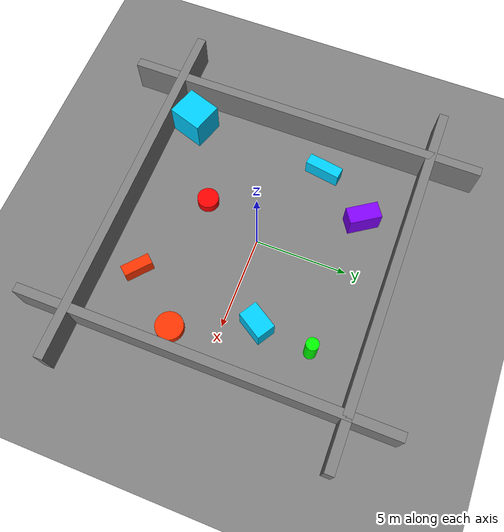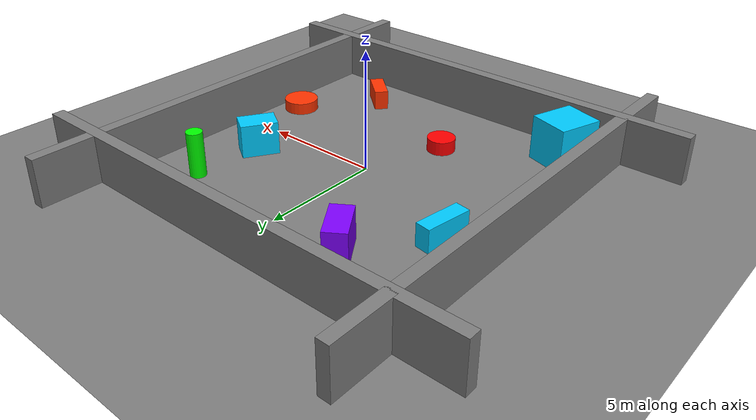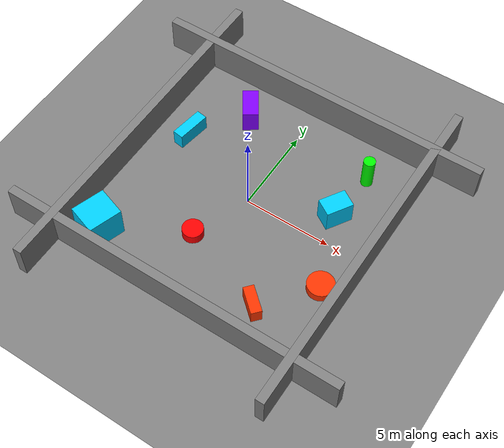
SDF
<?xml version="1.0" ?>
<sdf version="1.8">
  <world name="random_world">
    <physics name="1ms" type="ignored">
      <max_step_size>0.002</max_step_size>
      <real_time_update_rate>200</real_time_update_rate>
    </physics>

    <plugin
      filename="ignition-gazebo-physics-system"
      name="ignition::gazebo::systems::Physics">
      <include_entity_names>true</include_entity_names>
    </plugin>
    <plugin
      filename="ignition-gazebo-sensors-system"
      name="ignition::gazebo::systems::Sensors">
      <render_engine>ogre</render_engine>
    </plugin>
    <plugin
      filename="ignition-gazebo-user-commands-system"
      name="ignition::gazebo::systems::UserCommands"> <!-- do no delete -->
    </plugin>
    <plugin
      filename="libignition-gazebo-contact-system.so"
      name="ignition::gazebo::systems::Contact">
      <topic>/world/random_world/physics/contacts</topic>
    </plugin>
    <plugin
      filename="ignition-gazebo-scene-broadcaster-system"
      name="ignition::gazebo::systems::SceneBroadcaster">
    </plugin>

    <light name='sun' type='directional'>
      <pose>0 0 10 0 -0 0</pose>
      <cast_shadows>true</cast_shadows>
      <intensity>1</intensity>
      <direction>-0.5 0.5 -1</direction>
      <diffuse>1 1 1 1</diffuse>
      <specular>0.1 0.1 0.1 1</specular>
      <attenuation>
        <range>10</range>
        <linear>1</linear>
        <constant>1</constant>
        <quadratic>0</quadratic>
      </attenuation>
    </light>

    <model name='ground_plane'>
      <static>true</static>
      <link name='link'>
        <collision name='collision'>
          <geometry>
            <plane>
              <normal>0 0 1</normal>
              <size>50 50</size>
            </plane>
          </geometry>
          <surface><friction><ode/></friction></surface>
        </collision>
        <visual name='visual'>
          <geometry>
            <plane>
              <normal>0 0 1</normal>
              <size>50 50</size>
            </plane>
          </geometry>
          <material>
            <ambient>0.5 0.5 0.5 1</ambient>
            <diffuse>0.5 0.5 0.5 1</diffuse>
          </material>
        </visual>
      </link>
    </model>

    <model name="north_wall">
      <pose>0 7.25 1.0 0 0 0</pose>
      <link name="link">
        <collision name="collision">
          <geometry>
            <box><size>20 0.5 2.0</size></box>
          </geometry>
        </collision>
        <visual name="visual">
          <geometry>
            <box><size>20 0.5 2.0</size></box>
          </geometry>
          <material>
            <ambient>0.5 0.5 0.5 1</ambient>
            <diffuse>0.5 0.5 0.5 1</diffuse>
          </material>
        </visual>
      </link>
      <static>true</static>
    </model>

    <model name="south_wall">
      <pose>0 -7.25 1.0 0 0 0</pose>
      <link name="link">
        <collision name="collision">
          <geometry>
            <box><size>20 0.5 2.0</size></box>
          </geometry>
        </collision>
        <visual name="visual">
          <geometry>
            <box><size>20 0.5 2.0</size></box>
          </geometry>
          <material>
            <ambient>0.5 0.5 0.5 1</ambient>
            <diffuse>0.5 0.5 0.5 1</diffuse>
          </material>
        </visual>
      </link>
      <static>true</static>
    </model>

    <model name="east_wall">
      <pose>7.25 0 1.0 0 0 0</pose>
      <link name="link">
        <collision name="collision">
          <geometry>
            <box><size>0.5 20 2.0</size></box>
          </geometry>
        </collision>
        <visual name="visual">
          <geometry>
            <box><size>0.5 20 2.0</size></box>
          </geometry>
          <material>
            <ambient>0.5 0.5 0.5 1</ambient>
            <diffuse>0.5 0.5 0.5 1</diffuse>
          </material>
        </visual>
      </link>
      <static>true</static>
    </model>

    <model name="west_wall">
      <pose>-7.25 0 1.0 0 0 0</pose>
      <link name="link">
        <collision name="collision">
          <geometry>
            <box><size>0.5 20 2.0</size></box>
          </geometry>
        </collision>
        <visual name="visual">
          <geometry>
            <box><size>0.5 20 2.0</size></box>
          </geometry>
          <material>
            <ambient>0.5 0.5 0.5 1</ambient>
            <diffuse>0.5 0.5 0.5 1</diffuse>
          </material>
        </visual>
      </link>
      <static>true</static>
    </model>

    <model name="box0">
      <pose>3.733425038176743 -5.241425008672844 0.42794371003605813 0 0 2.42497068493268</pose>
      <link name="link">
        <collision name="collision">
          <geometry>
            <box><size>1.5482145044857927 0.5968663499647129 0.8558874200721163</size></box>
          </geometry>
        </collision>
        <visual name="visual">
          <geometry>
            <box><size>1.5482145044857927 0.5968663499647129 0.8558874200721163</size></box>
          </geometry>
          <material>
            <ambient>1.0 0.2 0.0 1</ambient>
            <diffuse>1.0 0.2 0.0 1</diffuse>
          </material>
        </visual>
      </link>
      <static>true</static>
    </model>

    <model name="box1">
      <pose>-5.218289931075442 2.003811167826486 0.47773756429862524 0 0 1.4180667326594991</pose>
      <link name="link">
        <collision name="collision">
          <geometry>
            <box><size>1.9417776243706621 0.6336617058421505 0.9554751285972505</size></box>
          </geometry>
        </collision>
        <visual name="visual">
          <geometry>
            <box><size>1.9417776243706621 0.6336617058421505 0.9554751285972505</size></box>
          </geometry>
          <material>
            <ambient>0.0 0.8 1.0 1</ambient>
            <diffuse>0.0 0.8 1.0 1</diffuse>
          </material>
        </visual>
      </link>
      <static>true</static>
    </model>

    <model name="box2">
      <pose>-3.0729447248402737 4.887439867411988 0.6857271008740238 0 0 2.1599574300822497</pose>
      <link name="link">
        <collision name="collision">
          <geometry>
            <box><size>1.7386793241038738 0.9020266528112173 1.3714542017480476</size></box>
          </geometry>
        </collision>
        <visual name="visual">
          <geometry>
            <box><size>1.7386793241038738 0.9020266528112173 1.3714542017480476</size></box>
          </geometry>
          <material>
            <ambient>0.5 0.0 1.0 1</ambient>
            <diffuse>0.5 0.0 1.0 1</diffuse>
          </material>
        </visual>
      </link>
      <static>true</static>
    </model>

    <model name="box3">
      <pose>4.398071647478061 1.699943623248763 0.7021885070580016 0 0 2.5870440080117785</pose>
      <link name="link">
        <collision name="collision">
          <geometry>
            <box><size>1.0261876300721462 1.5393269389131372 1.4043770141160032</size></box>
          </geometry>
        </collision>
        <visual name="visual">
          <geometry>
            <box><size>1.0261876300721462 1.5393269389131372 1.4043770141160032</size></box>
          </geometry>
          <material>
            <ambient>0.0 0.8 1.0 1</ambient>
            <diffuse>0.0 0.8 1.0 1</diffuse>
          </material>
        </visual>
      </link>
      <static>true</static>
    </model>

    <model name="box4">
      <pose>-5.510181098408049 -5.820657632008204 0.9361695104391912 0 0 1.2519052175349097</pose>
      <link name="link">
        <collision name="collision">
          <geometry>
            <box><size>1.9223310623950898 1.7128605400325405 1.8723390208783823</size></box>
          </geometry>
        </collision>
        <visual name="visual">
          <geometry>
            <box><size>1.9223310623950898 1.7128605400325405 1.8723390208783823</size></box>
          </geometry>
          <material>
            <ambient>0.0 0.8 1.0 1</ambient>
            <diffuse>0.0 0.8 1.0 1</diffuse>
          </material>
        </visual>
      </link>
      <static>true</static>
    </model>

    <model name="cylinder0">
      <pose>4.677689007681374 4.653642508492346 0.9483179600973479 0 0 4.443739996960471</pose>
      <link name="link">
        <collision name="collision">
          <geometry>
            <cylinder><radius>0.3315796842824376</radius><length>1.8966359201946958</length></cylinder>
          </geometry>
        </collision>
        <visual name="visual">
          <geometry>
            <cylinder><radius>0.3315796842824376</radius><length>1.8966359201946958</length></cylinder>
          </geometry>
          <material>
            <ambient>0.0 1.0 0.0 1</ambient>
            <diffuse>0.0 1.0 0.0 1</diffuse>
          </material>
        </visual>
      </link>
      <static>true</static>
    </model>

    <model name="cylinder1">
      <pose>-1.2700082900576914 -3.323198413728937 0.2887244460041881 0 0 3.414117483864934</pose>
      <link name="link">
        <collision name="collision">
          <geometry>
            <cylinder><radius>0.588148783941403</radius><length>0.5774488920083762</length></cylinder>
          </geometry>
        </collision>
        <visual name="visual">
          <geometry>
            <cylinder><radius>0.588148783941403</radius><length>0.5774488920083762</length></cylinder>
          </geometry>
          <material>
            <ambient>1.0 0.0 0.0 1</ambient>
            <diffuse>1.0 0.0 0.0 1</diffuse>
          </material>
        </visual>
      </link>
      <static>true</static>
    </model>

    <model name="cylinder2">
      <pose>6.023713790621036 -2.4180249844767885 0.253161906571973 0 0 0.6444982365079392</pose>
      <link name="link">
        <collision name="collision">
          <geometry>
            <cylinder><radius>0.747468074976634</radius><length>0.506323813143946</length></cylinder>
          </geometry>
        </collision>
        <visual name="visual">
          <geometry>
            <cylinder><radius>0.747468074976634</radius><length>0.506323813143946</length></cylinder>
          </geometry>
          <material>
            <ambient>1.0 0.2 0.0 1</ambient>
            <diffuse>1.0 0.2 0.0 1</diffuse>
          </material>
        </visual>
      </link>
      <static>true</static>
    </model>

  </world>
</sdf>
